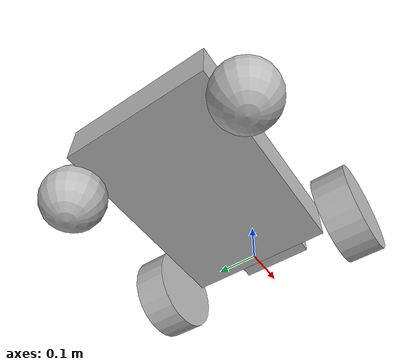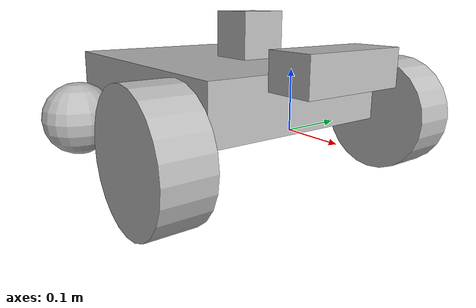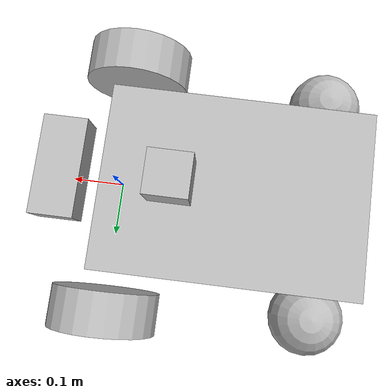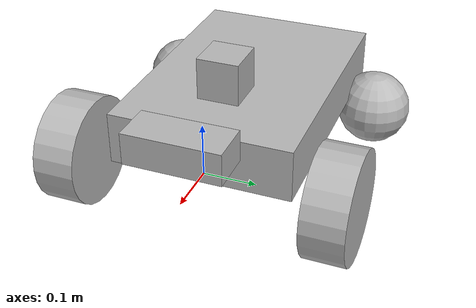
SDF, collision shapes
<sdf version='1.6'>
  <model name='base_rover_cart'>
    <link name='base_link'>
      <pose frame=''>0 0 0 0 -0 0</pose>
      <inertial>
        <pose frame=''>-0.225017 -0 -3e-06 0 -0 0</pose>
        <mass>20.002</mass>
        <inertia>
          <ixx>0.209435</ixx>
          <ixy>6.09911e-21</ixy>
          <ixz>-1.11997e-05</ixz>
          <iyy>0.433401</iyy>
          <iyz>7.56426e-26</iyz>
          <izz>0.609494</izz>
        </inertia>
      </inertial>
      <collision name='base_link_collision'>
        <pose frame=''>-0.225 0 0.05 0 -0 0</pose>
        <geometry>
          <box>
            <size>0.5 0.35 0.1</size>
          </box>
        </geometry>
      </collision>
      <collision name='base_link_fixed_joint_lump__camera_link_collision_1'>
        <pose frame=''>0.09 0 0.11 0 -0 0</pose>
        <geometry>
          <box>
            <size>0.08 0.18 0.06</size>
          </box>
        </geometry>
        <surface>
          <contact>
            <ode/>
          </contact>
          <friction>
            <ode/>
          </friction>
        </surface>
      </collision>
      <collision name='base_link_fixed_joint_lump__caster_left_link_collision_2'>
        <pose frame=''>-0.4 -0.22 -0.03 0 -0 0</pose>
        <geometry>
          <sphere>
            <radius>0.075</radius>
          </sphere>
        </geometry>
        <surface>
          <contact>
            <ode>
              <kp>5e+07</kp>
              <kd>0.2</kd>
              <max_vel>0.01</max_vel>
              <min_depth>0.001</min_depth>
            </ode>
          </contact>
          <friction>
            <ode>
              <mu>0</mu>
              <mu2>0</mu2>
              <fdir1>1 0 0</fdir1>
            </ode>
          </friction>
        </surface>
      </collision>
      <collision name='base_link_fixed_joint_lump__caster_right_link_collision_3'>
        <pose frame=''>-0.4 0.22 -0.03 0 -0 0</pose>
        <geometry>
          <sphere>
            <radius>0.075</radius>
          </sphere>
        </geometry>
        <surface>
          <contact>
            <ode>
              <kp>5e+07</kp>
              <kd>0.2</kd>
              <max_vel>0.01</max_vel>
              <min_depth>0.001</min_depth>
            </ode>
          </contact>
          <friction>
            <ode>
              <mu>0</mu>
              <mu2>0</mu2>
              <fdir1>1 0 0</fdir1>
            </ode>
          </friction>
        </surface>
      </collision>
      <collision name='base_link_fixed_joint_lump__laser_collision_4'>
        <pose frame=''>-0.11 0 0.15 0 -0 3.14</pose>
        <geometry>
          <box>
            <size>0.08 0.08 0.08</size>
          </box>
        </geometry>
        <surface>
          <contact>
            <ode/>
          </contact>
          <friction>
            <ode/>
          </friction>
        </surface>
      </collision>
      <visual name='base_link_visual'>
        <pose frame=''>0 0 0 0 -0 0</pose>
        <geometry>
          <mesh>
            <scale>0.001 0.001 0.001</scale>
            <uri>model://rover_description/meshes/rover_cart.dae</uri>
          </mesh>
        </geometry>
      </visual>
      <visual name='base_link_fixed_joint_lump__camera_link_visual_1'>
        <pose frame=''>0.09 0 0.11 1.5708 -0 1.5708</pose>
        <geometry>
          <mesh>
            <scale>0.001 0.001 0.001</scale>
            <uri>model://rover_description/meshes/astra.dae</uri>
          </mesh>
        </geometry>
        <material>
          <script>
            <uri>__default__</uri>
            <name>__default__</name>
          </script>
        </material>
      </visual>
      <visual name='base_link_fixed_joint_lump__laser_visual_2'>
        <pose frame=''>-0.11 0 0.1 0 -0 3.14</pose>
        <geometry>
          <mesh>
            <scale>0.001 0.001 0.001</scale>
            <uri>model://rover_description/meshes/lidar.dae</uri>
          </mesh>
        </geometry>
        <material>
          <script>
            <uri>__default__</uri>
            <name>__default__</name>
          </script>
        </material>
      </visual>
      <velocity_decay/>
      <sensor name='openni_camera_camera' type='depth'>
        <always_on>1</always_on>
        <visualize>1</visualize>
        <camera name='__default__'>
          <horizontal_fov>1.047</horizontal_fov>
          <image>
            <width>640</width>
            <height>480</height>
            <format>R8G8B8</format>
          </image>
          <depth_camera>
            <output>depths</output>
          </depth_camera>
          <clip>
            <near>0.1</near>
            <far>100</far>
          </clip>
        </camera>
        <plugin name='kinect_controller' filename='libgazebo_ros_openni_kinect.so'>
          <alwaysOn>1</alwaysOn>
          <updateRate>10.0</updateRate>
          <cameraName>camera</cameraName>
          <frameName>camera_depth_frame</frameName>
          <imageTopicName>rgb/image_raw</imageTopicName>
          <depthImageTopicName>depth/image_raw</depthImageTopicName>
          <pointCloudTopicName>depth/points</pointCloudTopicName>
          <cameraInfoTopicName>rgb/camera_info</cameraInfoTopicName>
          <depthImageCameraInfoTopicName>depth/camera_info</depthImageCameraInfoTopicName>
          <pointCloudCutoff>0.4</pointCloudCutoff>
          <hackBaseline>0.07</hackBaseline>
          <distortionK1>0.0</distortionK1>
          <distortionK2>0.0</distortionK2>
          <distortionK3>0.0</distortionK3>
          <distortionT1>0.0</distortionT1>
          <distortionT2>0.0</distortionT2>
          <CxPrime>0.0</CxPrime>
          <Cx>0.0</Cx>
          <Cy>0.0</Cy>
          <focalLength>0.0</focalLength>
        </plugin>
        <pose frame=''>0.09 0 0.11 0 -0 0</pose>
      </sensor>
      <velocity_decay/>
      <velocity_decay/>
      <gravity>1</gravity>
      <velocity_decay/>
      <sensor name='head_rplidar_sensor' type='ray'>
        <visualize>0</visualize>
        <update_rate>40</update_rate>
        <ray>
          <scan>
            <horizontal>
              <samples>720</samples>
              <resolution>1</resolution>
              <min_angle>-3.14159</min_angle>
              <max_angle>3.14159</max_angle>
            </horizontal>
          </scan>
          <range>
            <min>0.2</min>
            <max>30</max>
            <resolution>0.01</resolution>
          </range>
          <noise>
            <type>gaussian</type>
            <mean>0</mean>
            <stddev>0.01</stddev>
          </noise>
        </ray>
        <plugin name='gazebo_ros_head_rplidar_controller' filename='libgazebo_ros_laser.so'>
          <topicName>scan</topicName>
          <frameName>laser</frameName>
        </plugin>
        <pose frame=''>-0.11 0 0.25 0 -0 3.14</pose>
      </sensor>
    </link>
    <link name='wheel_left_link'>
      <pose frame=''>0 0.25 0 0 -0 0</pose>
      <inertial>
        <pose frame=''>0 0 0 0 -0 0</pose>
        <mass>0.5</mass>
        <inertia>
          <ixx>0.000986875</ixx>
          <ixy>0</ixy>
          <ixz>0</ixz>
          <iyy>0.000145375</iyy>
          <iyz>0</iyz>
          <izz>0.000986875</izz>
        </inertia>
      </inertial>
      <collision name='wheel_left_link_collision'>
        <pose frame=''>0 0 0 1.5708 -0 0</pose>
        <geometry>
          <cylinder>
            <length>0.08</length>
            <radius>0.105</radius>
          </cylinder>
        </geometry>
        <surface>
          <contact>
            <ode>
              <kp>5e+07</kp>
              <kd>0.2</kd>
              <max_vel>0.01</max_vel>
              <min_depth>0.001</min_depth>
            </ode>
          </contact>
          <friction>
            <ode>
              <mu>50</mu>
              <mu2>50</mu2>
              <fdir1>1 0 0</fdir1>
            </ode>
          </friction>
        </surface>
      </collision>
      <visual name='wheel_left_link_visual'>
        <pose frame=''>0 0 0 0 -0 -3.14159</pose>
        <geometry>
          <mesh>
            <scale>0.001 0.001 0.001</scale>
            <uri>model://rover_description/meshes/wheel_rover.dae</uri>
          </mesh>
        </geometry>
        <material>
          <script>
            <uri>__default__</uri>
            <name>__default__</name>
          </script>
        </material>
      </visual>
      <gravity>1</gravity>
      <velocity_decay/>
    </link>
    <joint name='wheel_left_joint' type='revolute'>
      <child>wheel_left_link</child>
      <parent>base_link</parent>
      <axis>
        <xyz>0 1 0</xyz>
        <limit>
          <lower>-1e+16</lower>
          <upper>1e+16</upper>
        </limit>
        <dynamics>
          <damping>0.0005</damping>
          <friction>0</friction>
          <spring_reference>0</spring_reference>
          <spring_stiffness>0</spring_stiffness>
        </dynamics>
        <use_parent_model_frame>1</use_parent_model_frame>
      </axis>
    </joint>
    <link name='wheel_right_link'>
      <pose frame=''>0 -0.25 0 0 -0 0</pose>
      <inertial>
        <pose frame=''>0 0 0 0 -0 0</pose>
        <mass>0.5</mass>
        <inertia>
          <ixx>0.000986875</ixx>
          <ixy>0</ixy>
          <ixz>0</ixz>
          <iyy>0.000145375</iyy>
          <iyz>0</iyz>
          <izz>0.000986875</izz>
        </inertia>
      </inertial>
      <collision name='wheel_right_link_collision'>
        <pose frame=''>0 0 0 1.5708 -0 0</pose>
        <geometry>
          <cylinder>
            <length>0.08</length>
            <radius>0.105</radius>
          </cylinder>
        </geometry>
        <surface>
          <contact>
            <ode>
              <kp>5e+07</kp>
              <kd>0.2</kd>
              <max_vel>0.01</max_vel>
              <min_depth>0.001</min_depth>
            </ode>
          </contact>
          <friction>
            <ode>
              <mu>50</mu>
              <mu2>50</mu2>
              <fdir1>1 0 0</fdir1>
            </ode>
          </friction>
        </surface>
      </collision>
      <visual name='wheel_right_link_visual'>
        <pose frame=''>0 0 0 0 -0 0</pose>
        <geometry>
          <mesh>
            <scale>0.001 0.001 0.001</scale>
            <uri>model://rover_description/meshes/wheel_rover.dae</uri>
          </mesh>
        </geometry>
        <material>
          <script>
            <uri>__default__</uri>
            <name>__default__</name>
          </script>
        </material>
      </visual>
      <gravity>1</gravity>
      <velocity_decay/>
    </link>
    <joint name='wheel_right_joint' type='revolute'>
      <child>wheel_right_link</child>
      <parent>base_link</parent>
      <axis>
        <xyz>0 1 0</xyz>
        <limit>
          <lower>-1e+16</lower>
          <upper>1e+16</upper>
        </limit>
        <dynamics>
          <damping>0.0005</damping>
          <friction>0</friction>
          <spring_reference>0</spring_reference>
          <spring_stiffness>0</spring_stiffness>
        </dynamics>
        <use_parent_model_frame>1</use_parent_model_frame>
      </axis>
    </joint>
    <plugin name='imu_plugin' filename='libgazebo_ros_imu.so'>
      <always_on>1</always_on>
      <topicName>imu</topicName>
      <serviceName>imu_service</serviceName>
      <gaussianNoise>0.0</gaussianNoise>
      <updateRate>200</updateRate>
      <imu>
        <noise>
          <type>gaussian</type>
          <rate>
            <mean>0.0</mean>
            <stddev>2e-4</stddev>
            <bias_mean>0.0000075</bias_mean>
            <bias_stddev>0.0000008</bias_stddev>
          </rate>
          <accel>
            <mean>0.0</mean>
            <stddev>1.7e-2</stddev>
            <bias_mean>0.1</bias_mean>
            <bias_stddev>0.001</bias_stddev>
          </accel>
        </noise>
      </imu>
      <bodyName>base_link</bodyName>
      <frameName>base_link</frameName>
      <xyzOffset>0 0 -0.136</xyzOffset>
      <rpyOffset>0 -0 0</rpyOffset>
    </plugin>
    <static>0</static>
    <plugin name='base_rover_controller' filename='libgazebo_ros_diff_drive.so'>
      <commandTopic>cmd_vel</commandTopic>
      <odometryTopic>odom</odometryTopic>
      <odometryFrame>odom</odometryFrame>
      <odometrySource>world</odometrySource>
      <publishOdomTF>1</publishOdomTF>
      <robotBaseFrame>base_link</robotBaseFrame>
      <publishWheelTF>0</publishWheelTF>
      <publishTf>1</publishTf>
      <publishWheelJointState>1</publishWheelJointState>
      <legacyMode>0</legacyMode>
      <updateRate>100</updateRate>
      <leftJoint>wheel_left_joint</leftJoint>
      <rightJoint>wheel_right_joint</rightJoint>
      <wheelSeparation>0.50</wheelSeparation>
      <wheelDiameter>0.21</wheelDiameter>
      <wheelAcceleration>1</wheelAcceleration>
      <wheelTorque>10</wheelTorque>
      <rosDebugLevel>na</rosDebugLevel>
    </plugin>
  </model>
</sdf>
